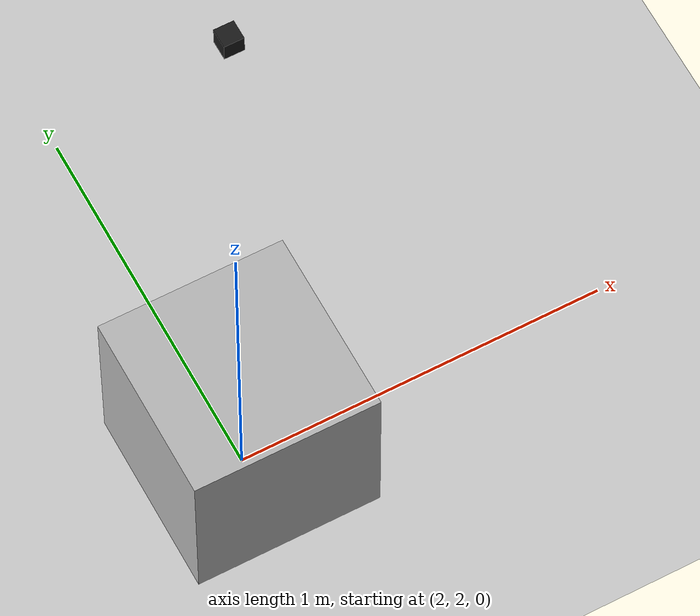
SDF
<?xml version="1.0" ?>
<sdf version="1.6">
  <world name="empty">
    <physics name="1ms" type="ignored">
      <max_step_size>0.001</max_step_size>
      <real_time_factor>1.0</real_time_factor>
    </physics>

    <plugin filename="ignition-gazebo-contact-system" name="gz::sim::systems::Contact" />
    <plugin filename="ignition-gazebo-imu-system" name="gz::sim::systems::Imu" />
    <plugin filename="ignition-gazebo-physics-system" name="gz::sim::systems::Physics" />
    <plugin filename="ignition-gazebo-scene-broadcaster-system"
      name="gz::sim::systems::SceneBroadcaster" />
    <plugin filename="ignition-gazebo-sensors-system" name="gz::sim::systems::Sensors" />
    <plugin filename="ignition-gazebo-user-commands-system" name="gz::sim::systems::UserCommands" />

    <spherical_coordinates>
      <surface_model>EARTH_WGS84</surface_model>
      <world_frame_orientation>ENU</world_frame_orientation>
      <latitude_deg>50.088384</latitude_deg>
      <longitude_deg>19.939128</longitude_deg>
      <elevation>0</elevation>
      <heading_deg>0</heading_deg>
    </spherical_coordinates>

    <light type="directional" name="sun">
      <cast_shadows>true</cast_shadows>
      <pose>0 0 10 0 0 0</pose>
      <diffuse>0.8 0.8 0.8 1</diffuse>
      <specular>0.2 0.2 0.2 1</specular>
      <attenuation>
        <range>1000</range>
        <constant>0.9</constant>
        <linear>0.01</linear>
        <quadratic>0.001</quadratic>
      </attenuation>
      <direction>-0.5 0.1 -0.9</direction>
    </light>

    <model name="ground_plane">
      <static>true</static>
      <link name="link">
        <collision name="collision">
          <geometry>
            <plane>
              <normal>0 0 1</normal>
              <size>100 100</size>
            </plane>
          </geometry>
        </collision>
        <visual name="visual">
          <geometry>
            <plane>
              <normal>0 0 1</normal>
              <size>100 100</size>
            </plane>
          </geometry>
          <material>
            <ambient>0.8 0.8 0.8 1</ambient>
            <diffuse>0.8 0.8 0.8 1</diffuse>
            <specular>0.8 0.8 0.8 1</specular>
          </material>
        </visual>
      </link>
    </model>

    <model name="box_1">
      <static>true</static>
      <pose>2.0 2.0 0.25 0 0 0</pose>
      <link name="link">
        <visual name="aruco_box_mesh">
          <geometry>
            <mesh>
              <uri>model://aruco_box/model.dae</uri>
              <scale>0.25 0.25 0.25</scale>
            </mesh>
          </geometry>
        </visual>
      </link>
    </model>

    <!-- Overhead camera looking straight down at box_1.
         Pose: 2 m above the box, pitched +pi/2 around Y so the camera's
         +X (forward) axis points in -Z (downward). -->
    <model name="overhead_camera">
      <static>true</static>
      <pose>2.0 2.0 2.0 0 1.5708 0</pose>
      <link name="link">
        <visual name="visual">
          <geometry>
            <box>
              <size>0.05 0.05 0.05</size>
            </box>
          </geometry>
          <material>
            <ambient>0.1 0.1 0.1 1</ambient>
            <diffuse>0.1 0.1 0.1 1</diffuse>
          </material>
        </visual>
        <sensor name="overhead_camera" type="camera">
          <always_on>true</always_on>
          <visualize>false</visualize>
          <topic>overhead_camera/image_raw</topic>
          <gz_frame_id>overhead_camera</gz_frame_id>
          <update_rate>30</update_rate>
          <camera>
            <horizontal_fov>1.047</horizontal_fov>
            <image>
              <width>640</width>
              <height>480</height>
            </image>
            <clip>
              <near>0.1</near>
              <far>100</far>
            </clip>
          </camera>
        </sensor>
      </link>
    </model>

  </world>
</sdf>
